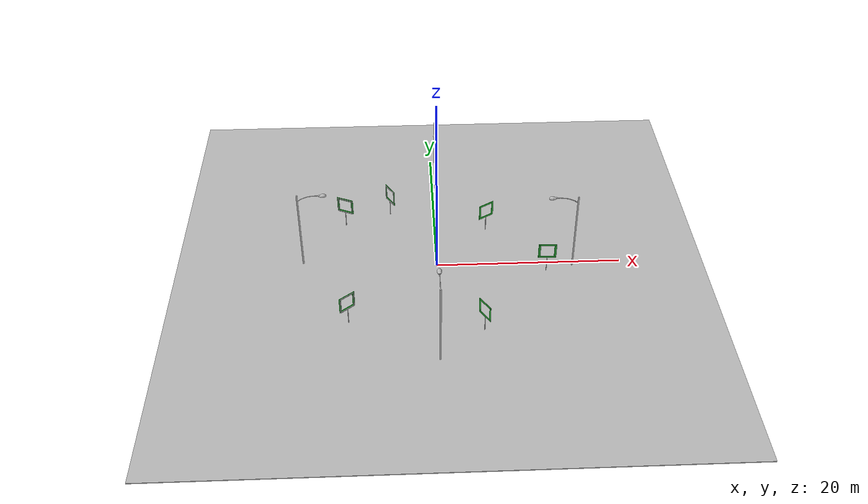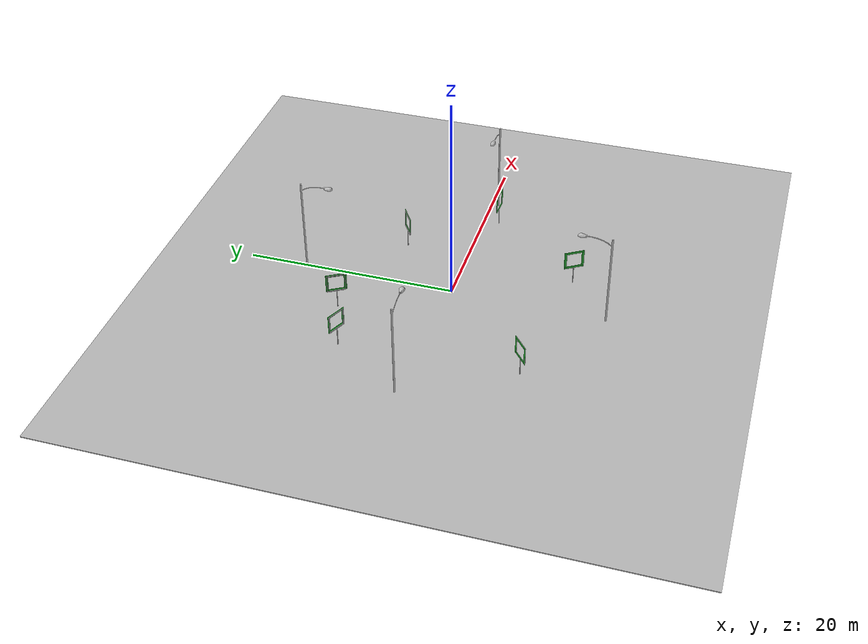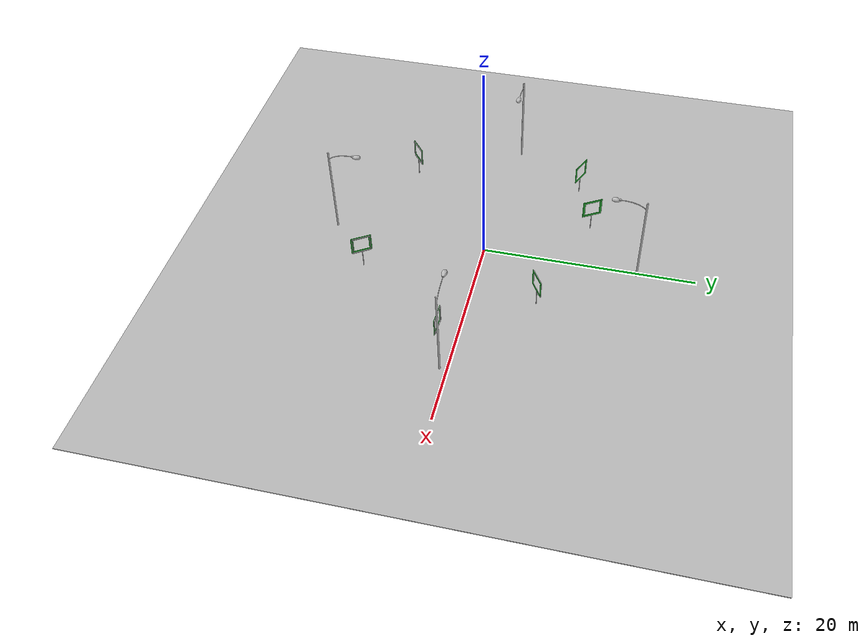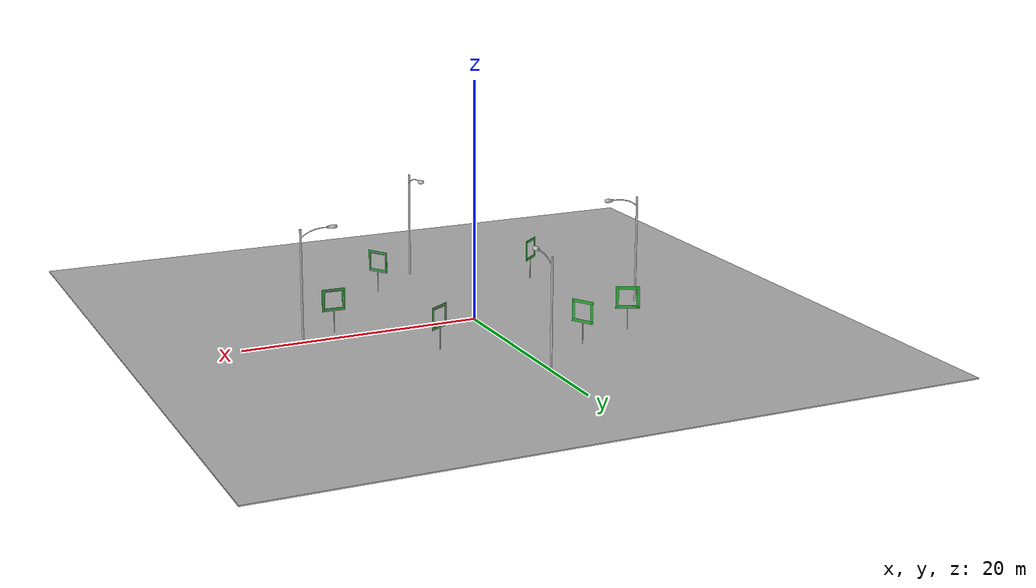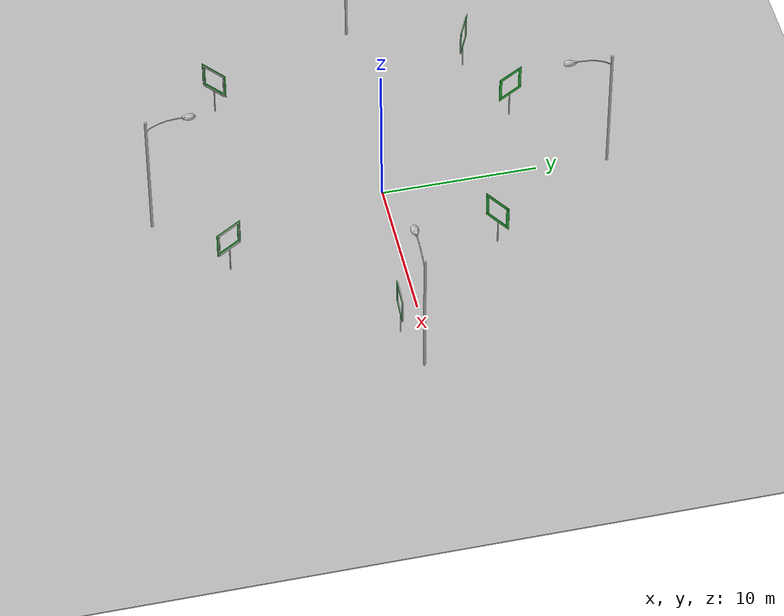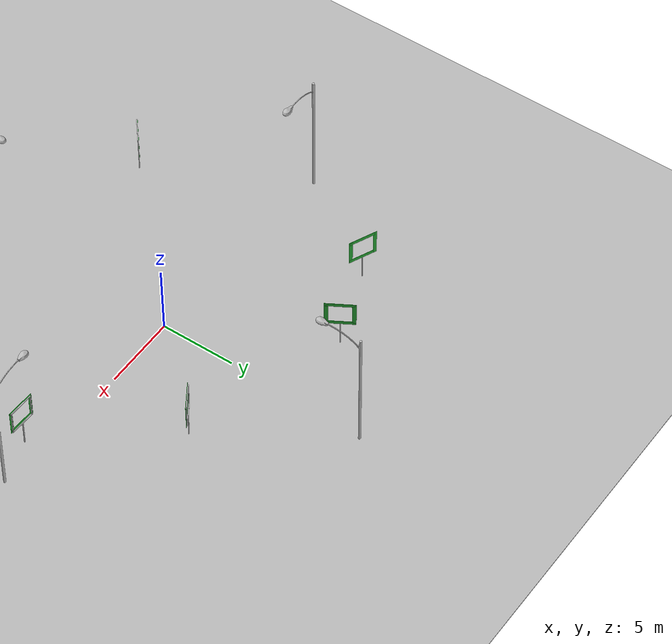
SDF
<sdf version="1.6">
 <world name="default">
  <physics type="ode">
   <ode>
    <solver><type>quick</type><iters>100</iters><sor>1.0</sor></solver>
    <constraints>
     <cfm>0.0</cfm>
     <erp>0.9</erp>
     <contact_max_correcting_vel>0.1</contact_max_correcting_vel>
     <contact_surface_layer>0.0</contact_surface_layer>
    </constraints>
   </ode>
   <real_time_update_rate>-1</real_time_update_rate>
  </physics>
  <include>
   <uri>model://custom_gate</uri>
   <name>custom_gate_1</name>
   <pose>5.75 6.09 -0.04 0 0 -2.57</pose>
  </include>
  <include>
   <uri>model://custom_gate</uri>
   <name>custom_gate_2</name>
   <pose>-9.425089 -8.900954 -0.040001 0 0 0.69</pose>
  </include>
  <include>
   <uri>model://custom_gate</uri>
   <name>custom_gate_3</name>
   <pose>4.44 -10.57 -0.04 0 0 2.13</pose>
  </include>
  <include>
   <uri>model://custom_gate</uri>
   <name>custom_gate_4</name>
   <pose>11.79 -1.47 -0.04 0 0 3.1</pose>
  </include>
  <include>
   <uri>model://custom_gate</uri>
   <name>custom_gate_5</name>
   <pose>-5.04 9.46 -0.04 0 0 -1.04</pose>
  </include>
  <include>
   <uri>model://custom_gate</uri>
   <name>custom_gate_6</name>
   <pose>-10.1 7.596694 -0.04 0 0 -0.43</pose>
  </include>
  <model name="basketball_court">
   <pose>0.4 0 0 0 -0 1.5708</pose>
   <static>1</static>
   <link name="floor">
    <collision name="collision"><geometry><box><size>57.5 57.5 0.1</size></box></geometry></collision>
    <visual name="visual">
     <cast_shadows>0</cast_shadows>
     <geometry><box><size>57.5 57.5 0.1</size></box></geometry>
     <material>
      <script>
       <uri>model://basketball_court/materials/scripts</uri>
       <uri>model://basketball_court/materials/textures</uri>
       <name>basketball_court</name>
      </script>
     </material>
    </visual>
   </link>
  </model>
  <gravity>0 0 -9.8</gravity>
  <magnetic_field>6e-06 2.3e-05 -4.2e-05</magnetic_field>
  <atmosphere type="adiabatic"/>
  <spherical_coordinates>
   <surface_model>EARTH_WGS84</surface_model>
   <latitude_deg>0</latitude_deg>
   <longitude_deg>0</longitude_deg>
   <elevation>0</elevation>
   <heading_deg>0</heading_deg>
  </spherical_coordinates>
  <model name="South Lamp Post">
   <model name="Lamp Post">
    <static>1</static>
    <link name="link">
     <collision name="collision">
      <geometry><mesh><uri>model://lamp_post/meshes/lamp_post.dae</uri><scale>3 3 3</scale></mesh></geometry>
     </collision>
     <visual name="visual">
      <geometry><mesh><uri>model://lamp_post/meshes/lamp_post.dae</uri><scale>3 3 3</scale></mesh></geometry>
     </visual>
    </link>
    <pose>2e-06 0 0 0 -0 0</pose>
   </model>
   <static>0</static>
   <pose>-0.232405 -14.6346 0 0 -0 3.14159</pose>
  </model>
  <model name="North Lamp Post">
   <model name="Lamp Post">
    <static>1</static>
    <link name="link">
     <collision name="collision">
      <geometry><mesh><uri>model://lamp_post/meshes/lamp_post.dae</uri><scale>3 3 3</scale></mesh></geometry>
     </collision>
     <visual name="visual">
      <geometry><mesh><uri>model://lamp_post/meshes/lamp_post.dae</uri><scale>3 3 3</scale></mesh></geometry>
     </visual>
    </link>
    <pose>2e-06 0 0 0 -0 0</pose>
   </model>
   <static>0</static>
   <pose>0.305297 14.5305 0 0 -0 0</pose>
  </model>
  <model name="East Lamp Post">
   <model name="Lamp Post">
    <static>1</static>
    <link name="link">
     <collision name="collision">
      <geometry><mesh><uri>model://lamp_post/meshes/lamp_post.dae</uri><scale>3 3 3</scale></mesh></geometry>
     </collision>
     <visual name="visual">
      <geometry><mesh><uri>model://lamp_post/meshes/lamp_post.dae</uri><scale>3 3 3</scale></mesh></geometry>
     </visual>
    </link>
    <pose>2e-06 0 0 0 -0 0</pose>
   </model>
   <static>0</static>
   <pose>14.7302 -0.638499 0 0 0 -1.5708</pose>
  </model>
  <model name="West Lamp Post">
   <model name="Lamp Post">
    <static>1</static>
    <link name="link">
     <collision name="collision">
      <geometry><mesh><uri>model://lamp_post/meshes/lamp_post.dae</uri><scale>3 3 3</scale></mesh></geometry>
     </collision>
     <visual name="visual">
      <geometry><mesh><uri>model://lamp_post/meshes/lamp_post.dae</uri><scale>3 3 3</scale></mesh></geometry>
     </visual>
    </link>
    <pose>2e-06 0 0 0 -0 0</pose>
   </model>
   <static>0</static>
   <pose>-14.5852 0.835438 0 0 -0 1.5708</pose>
  </model>
 </world>
</sdf>

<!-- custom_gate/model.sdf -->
<sdf version="1.6">
  <model name="custom_gate">
    <static>true</static>
    <pose>0 0 0 0 0 0</pose>

    <!-- Detection Envelopes -->
    <link name="paper_back0">
      <pose>0 0.05 2 0 0 0</pose>
      <collision name="collision">
        <geometry>
          <box>
            <size>0.1 0.01 0.1</size>
          </box>
        </geometry>
      </collision>
      <visual name="visual">
        <geometry>
          <box>
            <size>1.85 0.01 0.25</size>
          </box>
        </geometry>
          <material>
            <script>
              <name>Gazebo/Green</name>
            </script>
          </material>
      </visual>
    </link>

    <link name="paper_back1">
      <pose>0.85 0.05 2.8 0 1.57 0</pose>
      <collision name="collision">
        <geometry>
          <box>
            <size>0.1 0.01 0.1</size>
          </box>
        </geometry>
      </collision>
      <visual name="visual">
        <geometry>
          <box>
            <size>1.85 0.01 0.25</size>
          </box>
        </geometry>
          <material>
            <script>
              <name>Gazebo/Green</name>
            </script>
          </material>
      </visual>
    </link>

    <link name="paper_back2">
      <pose>-0.85 0.05 2.8 0 1.57 0</pose>
      <collision name="collision">
        <geometry>
          <box>
            <size>0.1 0.01 0.1</size>
          </box>
        </geometry>
      </collision>
      <visual name="visual">
        <geometry>
          <box>
            <size>1.85 0.01 0.25</size>
          </box>
        </geometry>
          <material>
            <script>
              <name>Gazebo/Green</name>
            </script>
          </material>
      </visual>
    </link>

    <link name="paper_back3">
      <pose>0 0.05 3.6 0 0 0</pose>
      <collision name="collision">
        <geometry>
          <box>
            <size>0.1 0.01 0.1</size>
          </box>
        </geometry>
      </collision>
      <visual name="visual">
        <geometry>
          <box>
            <size>1.85 0.01 0.25</size>
          </box>
        </geometry>
          <material>
            <script>
              <name>Gazebo/Green</name>
            </script>
          </material>
      </visual>
    </link>

    <!-- Gate Model -->
    <link name='dronerace_gate'>
      <pose>0 0 0 0 0 0</pose>
      <visual name='gate_visual'>
        <geometry>
          <mesh>
            <uri>model://dronerace_gate_2018/normal_gate_2018.dae</uri>
            <scale>1.2 1.2 1.2</scale>
          </mesh>
        </geometry>
      </visual>
      <collision name='gate_collision'>
        <geometry>
          <mesh>
            <uri>model://dronerace_gate_2018/normal_gate_2018.dae</uri>
            <scale>1.2 1.2 1.2</scale>
          </mesh>
        </geometry>
        <max_contacts>10</max_contacts>
        <surface>
          <contact>
            <ode/>
          </contact>
          <bounce/>
          <friction>
            <torsional>
              <ode/>
            </torsional>
            <ode/>
          </friction>
        </surface>
      </collision>
    </link>
  </model>
</sdf>
